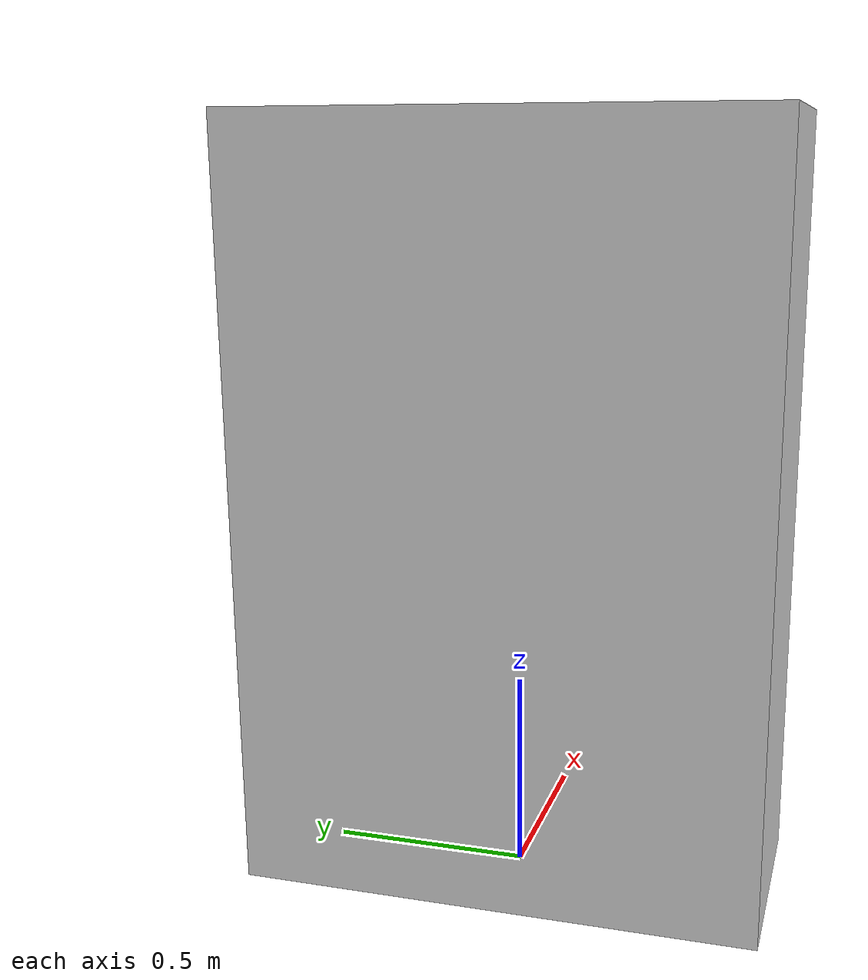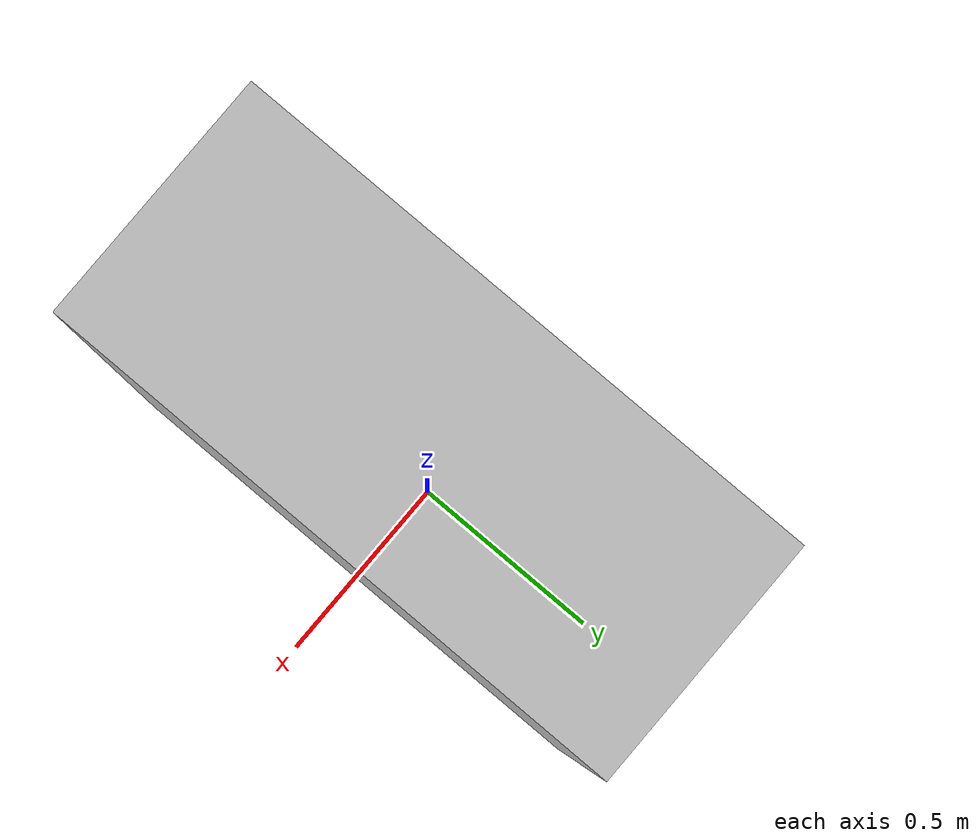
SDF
<?xml version="1.0" ?>
<sdf version="1.6">
  <model name="rpo2023/closet">
    <static>true</static>
    <link name="1_link">
      <collision name="1_col">
        <geometry>
          <box>
            <size>0.55 1.3 1.9</size>
          </box>
        </geometry>
      </collision>
      <visual name="1_vis">
        <geometry>
          <box>
            <size>0.55 1.3 1.9</size>
          </box>
        </geometry>
      </visual>
      <pose>0.0 0.0 0.95 0 0 0</pose>
    </link>
    <link name="on_top_of">
      <virtual_volume name="on_top_of_vv">
        <geometry>
          <box>
            <size>0.53 1.24 0.25</size>
          </box>
        </geometry>
        <pose>0.0 0.0 2.045 0 0 0</pose>
      </virtual_volume>
    </link>
    <link name="in_front_of">
      <virtual_volume name="in_front_of_vv">
        <geometry>
          <box>
            <size>0.2 1.1 0.01</size>
          </box>
        </geometry>
        <pose>0.775 0.0 0.005 0 0 0</pose>
      </virtual_volume>
    </link>
  </model>
</sdf>
